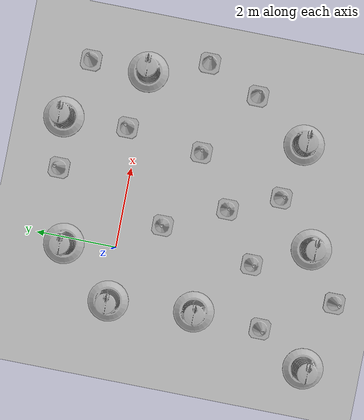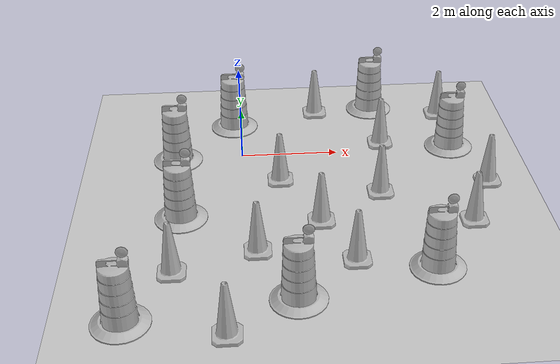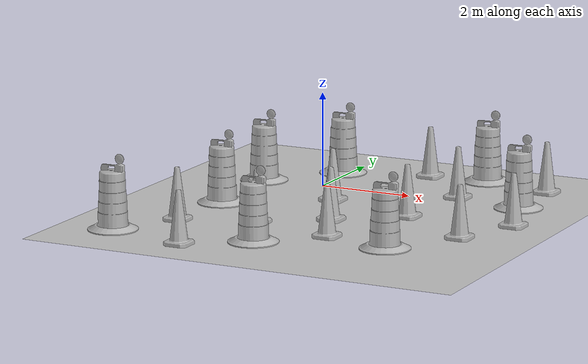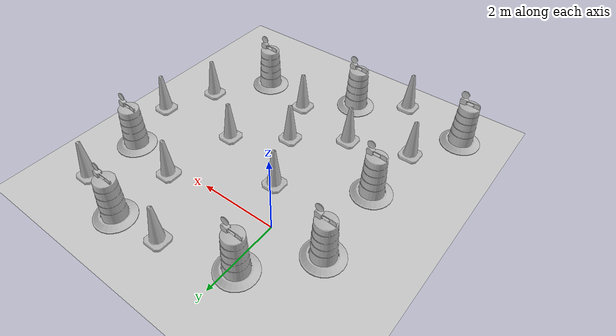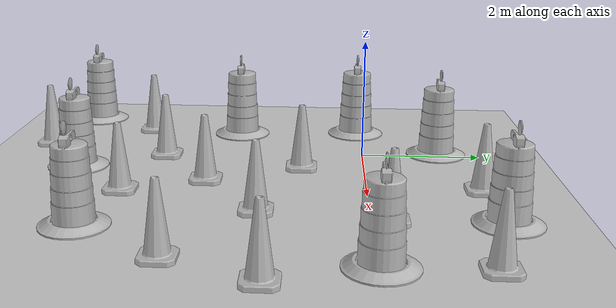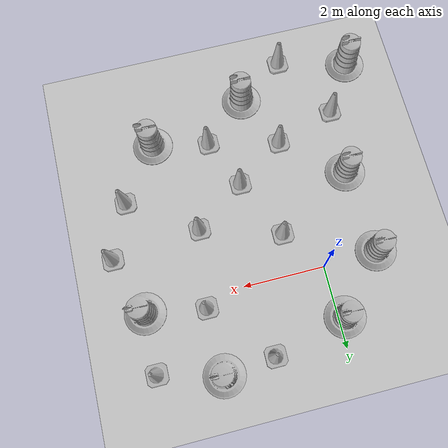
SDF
<sdf version="1.7">
 <world name="default">
  <light name="sun" type="directional">
   <pose>0 0 10 0 -0 0</pose>
   <diffuse>0.8 0.8 0.8 1</diffuse>
   <specular>0.2 0.2 0.2 1</specular>
   <attenuation>
    <range>1000</range>
    <constant>0.9</constant>
    <linear>0.01</linear>
    <quadratic>0.001</quadratic>
   </attenuation>
   <direction>-0.5 0.1 -0.9</direction>
   <spot><inner_angle>0</inner_angle><outer_angle>0</outer_angle><falloff>0</falloff></spot>
  </light>
  <model name="ground_plane">
   <static>1</static>
   <link name="link">
    <collision name="collision">
     <geometry><plane><normal>0 0 1</normal><size>100 100</size></plane></geometry>
     <surface>
      <contact><collide_bitmask>65535</collide_bitmask></contact>
      <friction><ode><mu>100</mu><mu2>50</mu2></ode></friction>
     </surface>
    </collision>
    <visual name="visual">
     <cast_shadows>0</cast_shadows>
     <geometry><plane><normal>0 0 1</normal><size>100 100</size></plane></geometry>
     <material>
      <script><uri>file://media/materials/scripts/gazebo.material</uri><name>Gazebo/Grey</name></script>
     </material>
    </visual>
   </link>
  </model>
  <gravity>0 0 -9.8</gravity>
  <magnetic_field>6e-06 2.3e-05 -4.2e-05</magnetic_field>
  <atmosphere type="adiabatic"/>
  <physics type="ode">
   <max_step_size>0.001</max_step_size>
   <real_time_factor>1</real_time_factor>
   <real_time_update_rate>1000</real_time_update_rate>
  </physics>
  <scene><ambient>0.4 0.4 0.4 1</ambient><background>0.7 0.7 0.7 1</background><shadows>1</shadows></scene>
  <audio><device>default</device></audio>
  <spherical_coordinates>
   <surface_model>EARTH_WGS84</surface_model>
   <latitude_deg>0</latitude_deg>
   <longitude_deg>0</longitude_deg>
   <elevation>0</elevation>
   <heading_deg>0</heading_deg>
  </spherical_coordinates>
  <model name="Construction Barrel">
   <link name="link">
    <inertial>
     <pose>0 0 0.4 0 -0 0</pose>
     <mass>500</mass>
     <inertia><ixx>51.2096</ixx><iyy>51.2096</iyy><izz>25</izz><ixy>0</ixy><ixz>0</ixz><iyz>0</iyz></inertia>
    </inertial>
    <collision name="collision">
     <geometry><mesh><uri>model://construction_barrel/meshes/construction_barrel.dae</uri></mesh></geometry>
    </collision>
    <visual name="visual">
     <geometry><mesh><uri>model://construction_barrel/meshes/construction_barrel.dae</uri></mesh></geometry>
    </visual>
   </link>
   <pose>-0.15557 1.28878 -0 0 0 -3.1e-05</pose>
  </model>
  <model name="Construction Barrel_0">
   <link name="link">
    <inertial>
     <pose>0 0 0.4 0 -0 0</pose>
     <mass>500</mass>
     <inertia><ixx>51.2096</ixx><iyy>51.2096</iyy><izz>25</izz><ixy>0</ixy><ixz>0</ixz><iyz>0</iyz></inertia>
    </inertial>
    <collision name="collision">
     <geometry><mesh><uri>model://construction_barrel/meshes/construction_barrel.dae</uri></mesh></geometry>
    </collision>
    <visual name="visual">
     <geometry><mesh><uri>model://construction_barrel/meshes/construction_barrel.dae</uri></mesh></geometry>
    </visual>
   </link>
   <pose>2.93764 1.89952 -0 0 0 -3e-05</pose>
  </model>
  <model name="Construction Cone">
   <link name="link">
    <collision name="collision">
     <geometry>
      <mesh><scale>10 10 10</scale><uri>model://construction_cone/meshes/construction_cone.dae</uri></mesh>
     </geometry>
    </collision>
    <visual name="visual">
     <geometry>
      <mesh><scale>10 10 10</scale><uri>model://construction_cone/meshes/construction_cone.dae</uri></mesh>
     </geometry>
    </visual>
    <inertial>
     <inertia><ixx>1</ixx><ixy>0</ixy><ixz>0</ixz><iyy>1</iyy><iyz>0</iyz><izz>1</izz></inertia>
     <mass>1</mass>
    </inertial>
   </link>
   <pose>0.755987 -1.03646 -0 0 -1e-06 0</pose>
  </model>
  <model name="Construction Cone_0">
   <link name="link">
    <collision name="collision">
     <geometry>
      <mesh><scale>10 10 10</scale><uri>model://construction_cone/meshes/construction_cone.dae</uri></mesh>
     </geometry>
    </collision>
    <visual name="visual">
     <geometry>
      <mesh><scale>10 10 10</scale><uri>model://construction_cone/meshes/construction_cone.dae</uri></mesh>
     </geometry>
    </visual>
    <inertial>
     <inertia><ixx>1</ixx><ixy>0</ixy><ixz>0</ixz><iyy>1</iyy><iyz>0</iyz><izz>1</izz></inertia>
     <mass>1</mass>
    </inertial>
   </link>
   <pose>2.72332 -1.63859 -9e-06 -2e-06 -0 -0</pose>
  </model>
  <model name="Construction Cone_1">
   <link name="link">
    <collision name="collision">
     <geometry>
      <mesh><scale>10 10 10</scale><uri>model://construction_cone/meshes/construction_cone.dae</uri></mesh>
     </geometry>
    </collision>
    <visual name="visual">
     <geometry>
      <mesh><scale>10 10 10</scale><uri>model://construction_cone/meshes/construction_cone.dae</uri></mesh>
     </geometry>
    </visual>
    <inertial>
     <inertia><ixx>1</ixx><ixy>0</ixy><ixz>0</ixz><iyy>1</iyy><iyz>0</iyz><izz>1</izz></inertia>
     <mass>1</mass>
    </inertial>
   </link>
   <pose>1.46159 -2.54627 -1e-05 0 -0 0</pose>
  </model>
  <model name="Construction Barrel_1">
   <link name="link">
    <inertial>
     <pose>0 0 0.4 0 -0 0</pose>
     <mass>500</mass>
     <inertia><ixx>51.2096</ixx><iyy>51.2096</iyy><izz>25</izz><ixy>0</ixy><ixz>0</ixz><iyz>0</iyz></inertia>
    </inertial>
    <collision name="collision">
     <geometry><mesh><uri>model://construction_barrel/meshes/construction_barrel.dae</uri></mesh></geometry>
    </collision>
    <visual name="visual">
     <geometry><mesh><uri>model://construction_barrel/meshes/construction_barrel.dae</uri></mesh></geometry>
    </visual>
   </link>
   <pose>-1.2004 -2.21394 -0 0 0 -2.5e-05</pose>
  </model>
  <model name="Construction Barrel_2">
   <link name="link">
    <inertial>
     <pose>0 0 0.4 0 -0 0</pose>
     <mass>500</mass>
     <inertia><ixx>51.2096</ixx><iyy>51.2096</iyy><izz>25</izz><ixy>0</ixy><ixz>0</ixz><iyz>0</iyz></inertia>
    </inertial>
    <collision name="collision">
     <geometry><mesh><uri>model://construction_barrel/meshes/construction_barrel.dae</uri></mesh></geometry>
    </collision>
    <visual name="visual">
     <geometry><mesh><uri>model://construction_barrel/meshes/construction_barrel.dae</uri></mesh></geometry>
    </visual>
   </link>
   <pose>4.43755 0.047635 -0 0 0 -2.4e-05</pose>
  </model>
  <model name="Construction Barrel_3">
   <link name="link">
    <inertial>
     <pose>0 0 0.4 0 -0 0</pose>
     <mass>500</mass>
     <inertia><ixx>51.2096</ixx><iyy>51.2096</iyy><izz>25</izz><ixy>0</ixy><ixz>0</ixz><iyz>0</iyz></inertia>
    </inertial>
    <collision name="collision">
     <geometry><mesh><uri>model://construction_barrel/meshes/construction_barrel.dae</uri></mesh></geometry>
    </collision>
    <visual name="visual">
     <geometry><mesh><uri>model://construction_barrel/meshes/construction_barrel.dae</uri></mesh></geometry>
    </visual>
   </link>
   <pose>0.885591 -4.78631 -0 0 0 -2.2e-05</pose>
  </model>
  <model name="Construction Barrel_4">
   <link name="link">
    <inertial>
     <pose>0 0 0.4 0 -0 0</pose>
     <mass>500</mass>
     <inertia><ixx>51.2096</ixx><iyy>51.2096</iyy><izz>25</izz><ixy>0</ixy><ixz>0</ixz><iyz>0</iyz></inertia>
    </inertial>
    <collision name="collision">
     <geometry><mesh><uri>model://construction_barrel/meshes/construction_barrel.dae</uri></mesh></geometry>
    </collision>
    <visual name="visual">
     <geometry><mesh><uri>model://construction_barrel/meshes/construction_barrel.dae</uri></mesh></geometry>
    </visual>
   </link>
   <pose>-2.0655 -5.15193 -0 0 0 -2.1e-05</pose>
  </model>
  <model name="Construction Barrel_5">
   <link name="link">
    <inertial>
     <pose>0 0 0.4 0 -0 0</pose>
     <mass>500</mass>
     <inertia><ixx>51.2096</ixx><iyy>51.2096</iyy><izz>25</izz><ixy>0</ixy><ixz>0</ixz><iyz>0</iyz></inertia>
    </inertial>
    <collision name="collision">
     <geometry><mesh><uri>model://construction_barrel/meshes/construction_barrel.dae</uri></mesh></geometry>
    </collision>
    <visual name="visual">
     <geometry><mesh><uri>model://construction_barrel/meshes/construction_barrel.dae</uri></mesh></geometry>
    </visual>
   </link>
   <pose>3.40287 -4.10611 -0 0 0 -2e-05</pose>
  </model>
  <model name="Construction Cone_2">
   <link name="link">
    <collision name="collision">
     <geometry>
      <mesh><scale>10 10 10</scale><uri>model://construction_cone/meshes/construction_cone.dae</uri></mesh>
     </geometry>
    </collision>
    <visual name="visual">
     <geometry>
      <mesh><scale>10 10 10</scale><uri>model://construction_cone/meshes/construction_cone.dae</uri></mesh>
     </geometry>
    </visual>
    <inertial>
     <inertia><ixx>1</ixx><ixy>0</ixy><ixz>0</ixz><iyy>1</iyy><iyz>0</iyz><izz>1</izz></inertia>
     <mass>1</mass>
    </inertial>
   </link>
   <pose>-1.29701 -3.90901 -0 0 -1e-06 0</pose>
  </model>
  <model name="Construction Barrel_6">
   <link name="link">
    <inertial>
     <pose>0 0 0.4 0 -0 0</pose>
     <mass>500</mass>
     <inertia><ixx>51.2096</ixx><iyy>51.2096</iyy><izz>25</izz><ixy>0</ixy><ixz>0</ixz><iyz>0</iyz></inertia>
    </inertial>
    <collision name="collision">
     <geometry><mesh><uri>model://construction_barrel/meshes/construction_barrel.dae</uri></mesh></geometry>
    </collision>
    <visual name="visual">
     <geometry><mesh><uri>model://construction_barrel/meshes/construction_barrel.dae</uri></mesh></geometry>
    </visual>
   </link>
   <pose>-1.34841 -0.071121 -3e-06 -1.1e-05 3e-06 -1.8e-05</pose>
  </model>
  <model name="Construction Cone_3">
   <link name="link">
    <collision name="collision">
     <geometry>
      <mesh><scale>10 10 10</scale><uri>model://construction_cone/meshes/construction_cone.dae</uri></mesh>
     </geometry>
    </collision>
    <visual name="visual">
     <geometry>
      <mesh><scale>10 10 10</scale><uri>model://construction_cone/meshes/construction_cone.dae</uri></mesh>
     </geometry>
    </visual>
    <inertial>
     <inertia><ixx>1</ixx><ixy>0</ixy><ixz>0</ixz><iyy>1</iyy><iyz>0</iyz><izz>1</izz></inertia>
     <mass>1</mass>
    </inertial>
   </link>
   <pose>1.67223 1.76817 -0 0 -1e-06 0</pose>
  </model>
  <model name="Construction Cone_4">
   <link name="link">
    <collision name="collision">
     <geometry>
      <mesh><scale>10 10 10</scale><uri>model://construction_cone/meshes/construction_cone.dae</uri></mesh>
     </geometry>
    </collision>
    <visual name="visual">
     <geometry>
      <mesh><scale>10 10 10</scale><uri>model://construction_cone/meshes/construction_cone.dae</uri></mesh>
     </geometry>
    </visual>
    <inertial>
     <inertia><ixx>1</ixx><ixy>0</ixy><ixz>0</ixz><iyy>1</iyy><iyz>0</iyz><izz>1</izz></inertia>
     <mass>1</mass>
    </inertial>
   </link>
   <pose>2.97797 0.287188 -0 0 -1e-06 0</pose>
  </model>
  <model name="Construction Cone_5">
   <link name="link">
    <collision name="collision">
     <geometry>
      <mesh><scale>10 10 10</scale><uri>model://construction_cone/meshes/construction_cone.dae</uri></mesh>
     </geometry>
    </collision>
    <visual name="visual">
     <geometry>
      <mesh><scale>10 10 10</scale><uri>model://construction_cone/meshes/construction_cone.dae</uri></mesh>
     </geometry>
    </visual>
    <inertial>
     <inertia><ixx>1</ixx><ixy>0</ixy><ixz>0</ixz><iyy>1</iyy><iyz>0</iyz><izz>1</izz></inertia>
     <mass>1</mass>
    </inertial>
   </link>
   <pose>0.231146 -3.39843 -8e-06 6e-06 -0 0</pose>
  </model>
  <model name="Construction Cone_6">
   <link name="link">
    <collision name="collision">
     <geometry>
      <mesh><scale>10 10 10</scale><uri>model://construction_cone/meshes/construction_cone.dae</uri></mesh>
     </geometry>
    </collision>
    <visual name="visual">
     <geometry>
      <mesh><scale>10 10 10</scale><uri>model://construction_cone/meshes/construction_cone.dae</uri></mesh>
     </geometry>
    </visual>
    <inertial>
     <inertia><ixx>1</ixx><ixy>0</ixy><ixz>0</ixz><iyy>1</iyy><iyz>0</iyz><izz>1</izz></inertia>
     <mass>1</mass>
    </inertial>
   </link>
   <pose>4.37309 -2.74386 -0 0 -1e-06 0</pose>
  </model>
  <model name="Construction Cone_7">
   <link name="link">
    <collision name="collision">
     <geometry>
      <mesh><scale>10 10 10</scale><uri>model://construction_cone/meshes/construction_cone.dae</uri></mesh>
     </geometry>
    </collision>
    <visual name="visual">
     <geometry>
      <mesh><scale>10 10 10</scale><uri>model://construction_cone/meshes/construction_cone.dae</uri></mesh>
     </geometry>
    </visual>
    <inertial>
     <inertia><ixx>1</ixx><ixy>0</ixy><ixz>0</ixz><iyy>1</iyy><iyz>0</iyz><izz>1</izz></inertia>
     <mass>1</mass>
    </inertial>
   </link>
   <pose>4.94383 -1.40924 -0 1e-06 -0 0</pose>
  </model>
  <model name="Construction Cone_8">
   <link name="link">
    <collision name="collision">
     <geometry>
      <mesh><scale>10 10 10</scale><uri>model://construction_cone/meshes/construction_cone.dae</uri></mesh>
     </geometry>
    </collision>
    <visual name="visual">
     <geometry>
      <mesh><scale>10 10 10</scale><uri>model://construction_cone/meshes/construction_cone.dae</uri></mesh>
     </geometry>
    </visual>
    <inertial>
     <inertia><ixx>1</ixx><ixy>0</ixy><ixz>0</ixz><iyy>1</iyy><iyz>0</iyz><izz>1</izz></inertia>
     <mass>1</mass>
    </inertial>
   </link>
   <pose>1.99921 -3.80159 -0 0 -0 0</pose>
  </model>
  <model name="Construction Cone_9">
   <link name="link">
    <collision name="collision">
     <geometry>
      <mesh><scale>10 10 10</scale><uri>model://construction_cone/meshes/construction_cone.dae</uri></mesh>
     </geometry>
    </collision>
    <visual name="visual">
     <geometry>
      <mesh><scale>10 10 10</scale><uri>model://construction_cone/meshes/construction_cone.dae</uri></mesh>
     </geometry>
    </visual>
    <inertial>
     <inertia><ixx>1</ixx><ixy>0</ixy><ixz>0</ixz><iyy>1</iyy><iyz>0</iyz><izz>1</izz></inertia>
     <mass>1</mass>
    </inertial>
   </link>
   <pose>-0.320693 -5.59947 -1e-05 0 -0 0</pose>
  </model>
  <model name="Construction Cone_10">
   <link name="link">
    <collision name="collision">
     <geometry>
      <mesh><scale>10 10 10</scale><uri>model://construction_cone/meshes/construction_cone.dae</uri></mesh>
     </geometry>
    </collision>
    <visual name="visual">
     <geometry>
      <mesh><scale>10 10 10</scale><uri>model://construction_cone/meshes/construction_cone.dae</uri></mesh>
     </geometry>
    </visual>
    <inertial>
     <inertia><ixx>1</ixx><ixy>0</ixy><ixz>0</ixz><iyy>1</iyy><iyz>0</iyz><izz>1</izz></inertia>
     <mass>1</mass>
    </inertial>
   </link>
   <pose>4.44901 1.50128 -0 0 -1e-06 0</pose>
  </model>
 </world>
</sdf>
